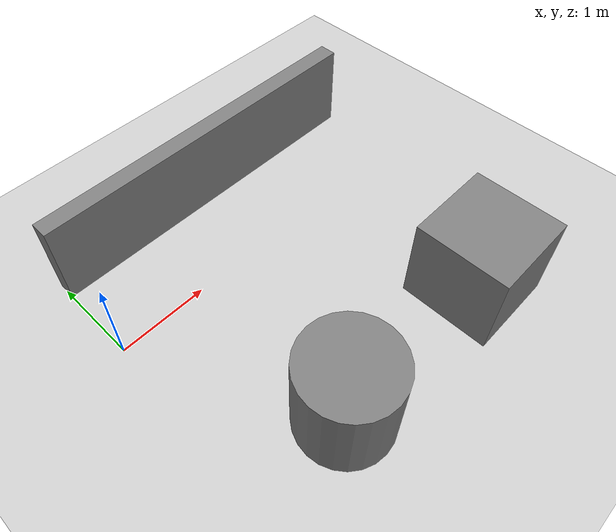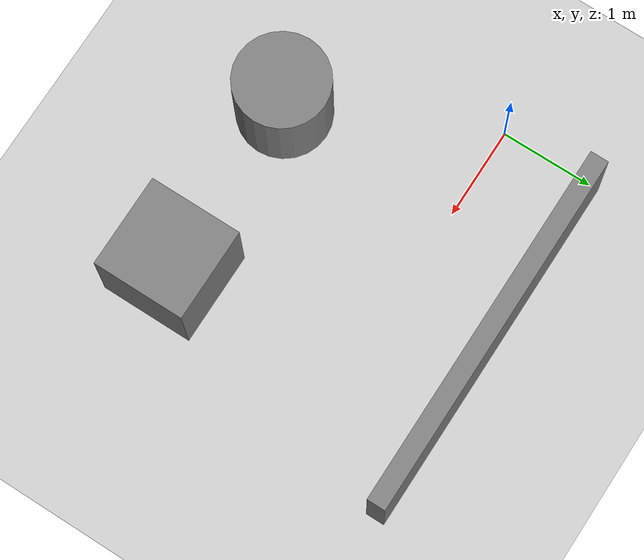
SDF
<?xml version="1.0" ?>
<sdf version="1.6">
    <world name="robot_world">

        <!-- Physics -->
        <plugin filename="libignition-gazebo-physics-system.so" name="ignition::gazebo::systems::Physics">
        </plugin>

        <!-- User Commands (for spawning models) -->
        <plugin filename="libignition-gazebo-user-commands-system.so" name="ignition::gazebo::systems::UserCommands">
        </plugin>

        <!-- Scene Broadcaster -->
        <plugin filename="libignition-gazebo-scene-broadcaster-system.so" name="ignition::gazebo::systems::SceneBroadcaster">
        </plugin>

        <!-- Sensors System (Required for LIDAR) -->
        <plugin filename="libignition-gazebo-sensors-system.so" name="ignition::gazebo::systems::Sensors">
            <render_engine>ogre2</render_engine>
        </plugin>

        <!-- Sun -->
        <light type="directional" name="sun">
            <cast_shadows>true</cast_shadows>
            <pose>0 0 10 0 0 0</pose>
            <diffuse>0.8 0.8 0.8 1</diffuse>
            <specular>0.2 0.2 0.2 1</specular>
            <direction>-0.5 0.1 -0.9</direction>
        </light>

        <!-- Ground Plane -->
        <model name="ground_plane">
            <static>true</static>
            <link name="link">
                <collision name="collision">
                    <geometry>
                        <plane>
                            <normal>0 0 1</normal>
                            <size>100 100</size>
                        </plane>
                    </geometry>
                </collision>
                <visual name="visual">
                    <geometry>
                        <plane>
                            <normal>0 0 1</normal>
                            <size>100 100</size>
                        </plane>
                    </geometry>
                    <material>
                        <ambient>0.8 0.8 0.8 1</ambient>
                        <diffuse>0.8 0.8 0.8 1</diffuse>
                    </material>
                </visual>
            </link>
        </model>

        <!-- Obstacles -->
        <model name="wall_1">
            <static>true</static>

            <pose>2 1 0.5 0 0 0</pose>

            <link name="link">

                <collision name="collision">
                <geometry>
                    <box>
                        <size>4 0.2 1</size>
                    </box>
                </geometry>
                </collision>

                <visual name="visual">
                <geometry>
                    <box>
                        <size>4 0.2 1</size>
                    </box>
                </geometry>
                <material>
                    <diffuse>0.5 0.5 0.5 1</diffuse>
                </material>
                </visual>

            </link>
        </model>

        <model name="box_obstacle">
            <static>true</static>

            <pose>3 -2 0.5 0 0 0</pose>

            <link name="link">

                <collision name="collision">
                <geometry>
                    <box>
                        <size>1 1 1</size>
                    </box>
                </geometry>
                </collision>

                <visual name="visual">
                <geometry>
                    <box>
                        <size>1 1 1</size>
                    </box>
                </geometry>
                <material>
                    <diffuse>0.5 0.5 0.5 1</diffuse>
                </material>
                </visual>

            </link>
        </model>

        <model name="cylinder_obstacle">
            <static>true</static>
            <pose>1 -2 0.5 0 0 0</pose>

            <link name="link">
                <collision name="collision">
                    <geometry>
                        <cylinder>
                            <radius>0.5</radius>
                            <length>1</length>
                        </cylinder>
                    </geometry>
                </collision>

                <visual name="visual">
                    <geometry>
                        <cylinder>
                            <radius>0.5</radius>
                            <length>1</length>
                        </cylinder>
                    </geometry>
                    <material>
                        <diffuse>0.5 0.5 0.5 1</diffuse>
                    </material>
                </visual>
            </link>
        </model>

    </world>
</sdf>
